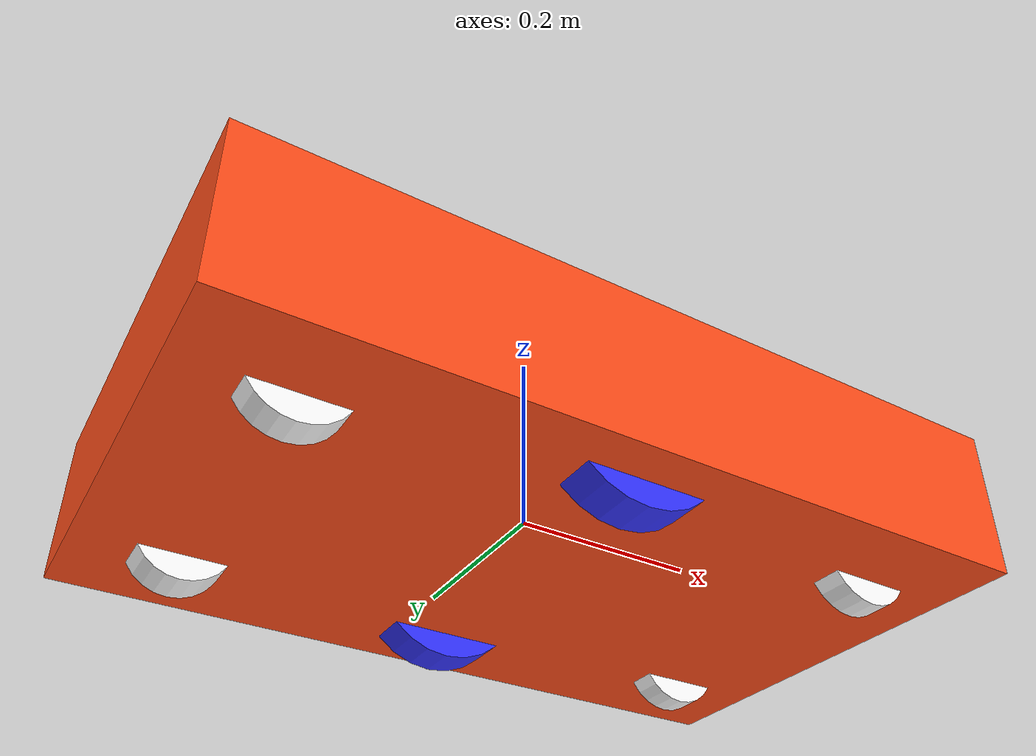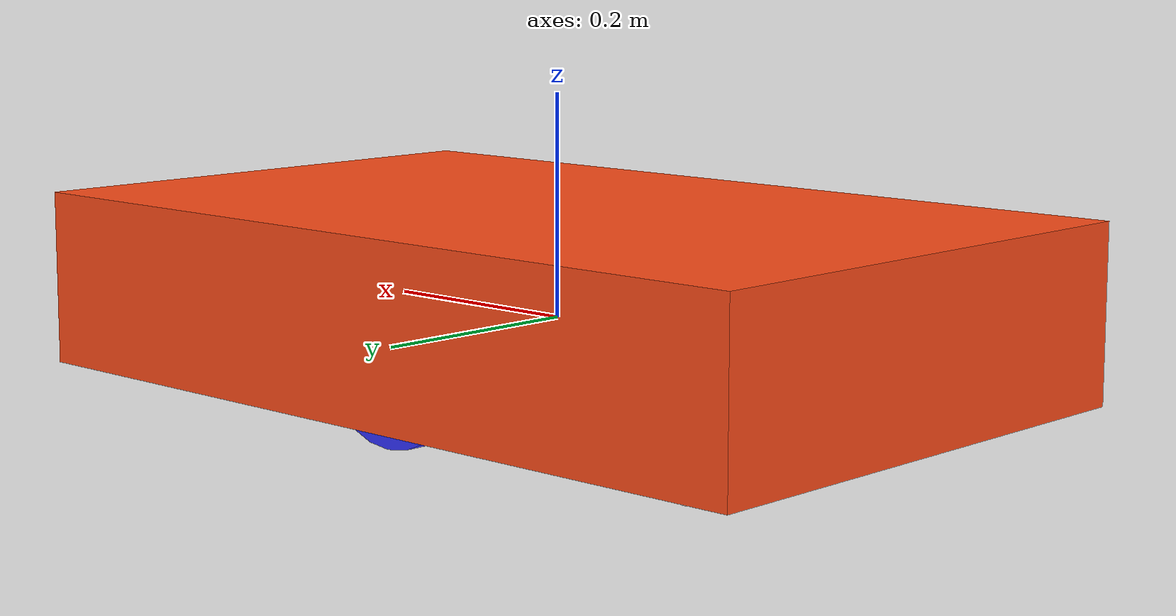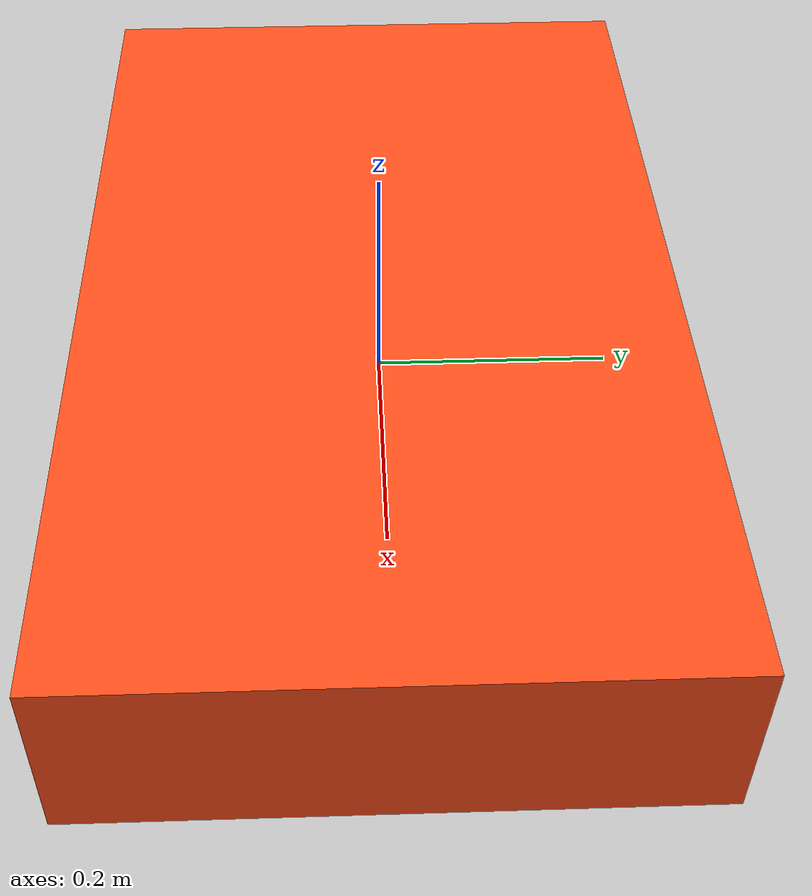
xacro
<?xml version="1.0"?>
<robot xmlns:xacro="http://www.ros.org/wiki/xacro" >

    <xacro:include filename="inertial_macros.xacro"/>

    <xacro:property name="chassis_length" value="0.81"/>
    <xacro:property name="chassis_width" value="0.5"/>
    <xacro:property name="chassis_height" value="0.160"/>
    <xacro:property name="chassis_mass" value="1.0"/>
    <xacro:property name="wheel_radius" value="0.086"/>
    <xacro:property name="wheel_thickness" value="0.044"/>
    <xacro:property name="wheel_mass" value="0.1"/>
    <xacro:property name="wheel_offset_x" value="0.226"/>
    <xacro:property name="wheel_offset_y" value="0.183"/>
    <xacro:property name="wheel_offset_z" value="0.01"/>
    <xacro:property name="caster_wheel_radius" value="0.05"/>
    <xacro:property name="caster_wheel_thickness" value="0.032"/>
    <xacro:property name="caster_wheel_mass" value="0.01"/>
    <xacro:property name="caster_wheel_offset_x" value="0.3"/>
    <xacro:property name="caster_wheel_offset_y" value="0.153"/>
    <xacro:property name="caster_wheel_offset_z" value="${wheel_offset_z - wheel_radius + caster_wheel_radius}"/>
    <xacro:property name="lidar_offset_x" value="0.35"/>
    <xacro:property name="lidar_offset_y" value="0"/>
    <xacro:property name="lidar_offset_z" value="0.121"/>
    <xacro:property name="camera_offset_x" value="0.4015"/>
    <xacro:property name="camera_offset_y" value="0"/>
    <xacro:property name="camera_offset_z" value="0.0578"/>

    <material name="white">
        <color rgba="1 1 1 1" />
    </material>

    <material name="orange">
        <color rgba="1 0.3 0.1 1"/>
    </material>

    <material name="blue">
        <color rgba="0.2 0.2 1 1"/>
    </material>

    <material name="black">
        <color rgba="0 0 0 1"/>
    </material>

    <material name="red">
        <color rgba="1 0 0 1"/>
    </material>

    <material name="t_black">
        <color rgba="0 0 0 0"/>
    </material>

    <material name="t_red">
        <color rgba="1 0 0 0"/>
    </material>

    <!-- BASE LINK -->

    <link name="base_link">

    </link>

    <!-- BASE_FOOTPRINT LINK -->

    <joint name="base_footprint_joint" type="fixed">
        <parent link="base_link"/>
        <child link="base_footprint"/>
        <origin xyz="0 0 0" rpy="0 0 0"/>
    </joint>

    <link name="base_footprint">
    </link>

    <!-- CHASSIS LINK -->

    <joint name="chassis_joint" type="fixed">
        <parent link="base_link"/>
        <child link="chassis"/>
        <origin xyz="0 0 ${-wheel_offset_z}"/>
    </joint>

    <link name="chassis">
        <visual>
            <origin xyz="0 0 ${chassis_height/2 - 0.05}"/>
            <geometry>
                <box size="${chassis_length} ${chassis_width} ${chassis_height}"/>
            </geometry>
            <material name="orange"/>
        </visual>
        <collision>
            <origin xyz="0 0 ${chassis_height/2}"/>
            <geometry>
                <box size="${chassis_length} ${chassis_width} ${chassis_height}"/>
            </geometry>
        </collision>
        <xacro:inertial_box mass="0.5" x="${chassis_length}" y="${chassis_width}" z="${chassis_height}">
            <origin xyz="0 0 ${chassis_height/2}" rpy="0 0 0"/>
        </xacro:inertial_box>
    </link>

    <gazebo reference="chassis">
        <material>Gazebo/Orange</material>
    </gazebo>

    <!-- LEFT WHEEL LINK -->

    <joint name="left_wheel_joint" type="continuous">
        <parent link="base_link"/>
        <child link="left_wheel"/>
        <origin xyz="0 ${wheel_offset_y} 0" rpy="-${pi/2} 0 0" />
        <axis xyz="0 0 1"/>
    </joint>

    <link name="left_wheel">
        <visual>
            <geometry>
                <cylinder radius="${wheel_radius}" length="${wheel_thickness}"/>
            </geometry>
            <material name="blue"/>
        </visual>
        <collision>
            <geometry>
                <sphere radius="${wheel_radius}"/>
            </geometry>
        </collision>
        <xacro:inertial_cylinder mass="${wheel_mass}" length="${wheel_thickness}" radius="${wheel_radius}">
            <origin xyz="0 0 0" rpy="0 0 0"/>
        </xacro:inertial_cylinder>
    </link>

    <gazebo reference="left_wheel">
        <material>Gazebo/Blue</material>
    </gazebo>

    <!-- RIGHT WHEEL LINK -->

    <joint name="right_wheel_joint" type="continuous">
        <parent link="base_link"/>
        <child link="right_wheel"/>
        <origin xyz="0 ${-wheel_offset_y} 0" rpy="${pi/2} 0 0" />
        <axis xyz="0 0 -1"/>
    </joint>

    <link name="right_wheel">
        <visual>
            <geometry>
                <cylinder radius="${wheel_radius}" length="${wheel_thickness}"/>
            </geometry>
            <material name="blue"/>
        </visual>
        <collision>
            <geometry>
                <sphere radius="${wheel_radius}"/>
            </geometry>
        </collision>
        <xacro:inertial_cylinder mass="${wheel_mass}" length="${wheel_thickness}" radius="${wheel_radius}">
            <origin xyz="0 0 0" rpy="0 0 0"/>
        </xacro:inertial_cylinder>
    </link>

    <gazebo reference="right_wheel">
        <material>Gazebo/Blue</material>
    </gazebo>

    <!-- CASTER WHEEL LINK -->

    <joint name="front_right_caster_wheel_joint" type="fixed">
        <parent link="chassis"/>
        <child link="front_right_caster_wheel"/>
        <origin xyz="${caster_wheel_offset_x} ${-caster_wheel_offset_y} ${caster_wheel_offset_z}" rpy="${pi/2} 0 0" />
    </joint>

    <link name="front_right_caster_wheel">
        <visual>
            <geometry>
                <cylinder radius="${caster_wheel_radius}" length="${caster_wheel_thickness}"/>
            </geometry>
            <material name="white"/>
        </visual>
        <collision>
            <geometry>
                <sphere radius="${caster_wheel_radius}"/>
            </geometry>
        </collision>
        <xacro:inertial_sphere mass="${caster_wheel_mass}" radius="${caster_wheel_thickness}">
            <origin xyz="0 0 0" rpy="0 0 0"/>
        </xacro:inertial_sphere>
    </link>

    <gazebo reference="front_right_caster_wheel">
        <material>Gazebo/White</material>
        <mu1 value="0.001"/>
        <mu2 value="0.001"/>
    </gazebo>

    <!-- CASTER WHEEL LINK -->

    <joint name="front_left_caster_wheel_joint" type="fixed">
        <parent link="chassis"/>
        <child link="front_left_caster_wheel"/>
        <origin xyz="${caster_wheel_offset_x} ${caster_wheel_offset_y} ${caster_wheel_offset_z}" rpy="${-pi/2} 0 0" />
    </joint>

    <link name="front_left_caster_wheel">
        <visual>
            <geometry>
                <cylinder radius="${caster_wheel_radius}" length="${caster_wheel_thickness}"/>
            </geometry>
            <material name="white"/>
        </visual>
        <collision>
            <geometry>
                <sphere radius="${caster_wheel_radius}"/>
            </geometry>
        </collision>
        <xacro:inertial_sphere mass="${caster_wheel_mass}" radius="${caster_wheel_radius}">
            <origin xyz="0 0 0" rpy="0 0 0"/>
        </xacro:inertial_sphere>
    </link>

    <gazebo reference="front_left_caster_wheel">
        <material>Gazebo/White</material>
        <mu1 value="0.001"/>
        <mu2 value="0.001"/>
    </gazebo>

    <!-- CASTER WHEEL LINK -->

    <joint name="rear_right_caster_wheel_joint" type="fixed">
        <parent link="chassis"/>
        <child link="rear_right_caster_wheel"/>
        <origin xyz="${-caster_wheel_offset_x} ${-caster_wheel_offset_y} ${caster_wheel_offset_z}" rpy="${pi/2} 0 0" />
    </joint>

    <link name="rear_right_caster_wheel">
        <visual>
            <geometry>
                <cylinder radius="${caster_wheel_radius}" length="${caster_wheel_thickness}"/>
            </geometry>
            <material name="white"/>
        </visual>
        <collision>
            <geometry>
                <sphere radius="${caster_wheel_radius}"/>
            </geometry>
        </collision>
        <xacro:inertial_sphere mass="${caster_wheel_mass}" radius="${caster_wheel_radius}">
            <origin xyz="0 0 0" rpy="0 0 0"/>
        </xacro:inertial_sphere>
    </link>

    <gazebo reference="rear_right_caster_wheel">
        <material>Gazebo/White</material>
        <mu1 value="0.001"/>
        <mu2 value="0.001"/>
    </gazebo>

    <!-- CASTER WHEEL LINK -->

    <joint name="rear_left_caster_wheel_joint" type="fixed">
        <parent link="chassis"/>
        <child link="rear_left_caster_wheel"/>
        <origin xyz="${-caster_wheel_offset_x} ${caster_wheel_offset_y} ${caster_wheel_offset_z}" rpy="${-pi/2} 0 0" />
    </joint>

    <link name="rear_left_caster_wheel">
        <visual>
            <geometry>
                <cylinder radius="${caster_wheel_radius}" length="${wheel_thickness}"/>
            </geometry>
            <material name="white"/>
        </visual>
        <collision>
            <geometry>
                <sphere radius="${caster_wheel_radius}"/>
            </geometry>
        </collision>
        <xacro:inertial_sphere mass="${caster_wheel_mass}" radius="${caster_wheel_radius}">
            <origin xyz="0 0 0" rpy="0 0 0"/>
        </xacro:inertial_sphere>
    </link>

    <gazebo reference="rear_left_caster_wheel">
        <material>Gazebo/White</material>
        <mu1 value="0.001"/>
        <mu2 value="0.001"/>
    </gazebo>

</robot>
